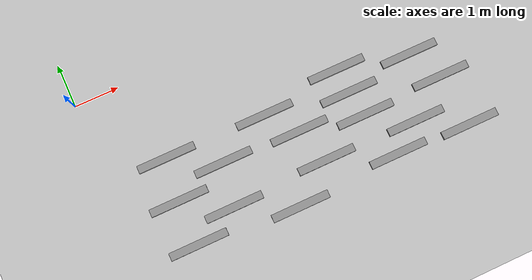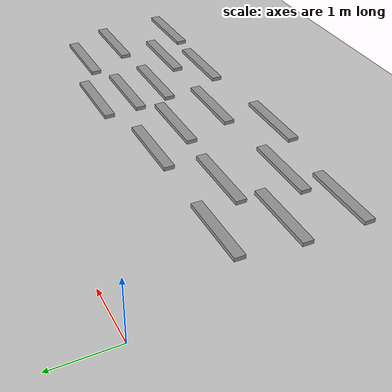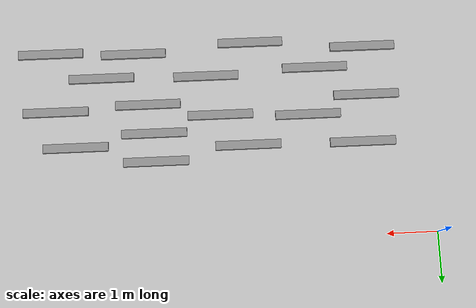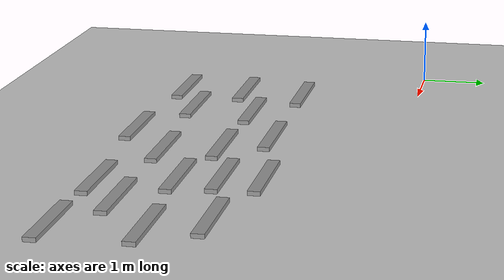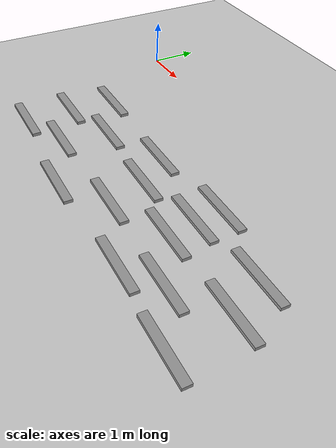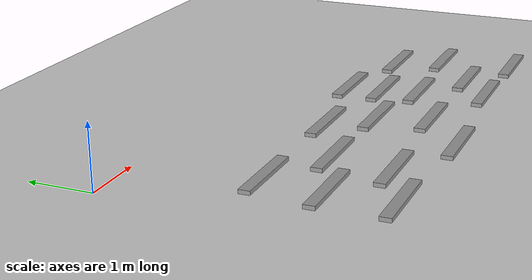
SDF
<sdf version="1.6">
 <world name="default">
  <model name="ground_plane">
   <static>1</static>
   <link name="link">
    <collision name="collision">
     <geometry><plane><normal>0 0 1</normal><size>100 100</size></plane></geometry>
     <surface>
      <contact><ode><kp>1e+12</kp><min_depth>0.01</min_depth></ode></contact>
      <friction><ode><mu>1e+06</mu><mu2>500000</mu2></ode></friction>
     </surface>
    </collision>
    <visual name="visual">
     <cast_shadows>0</cast_shadows>
     <geometry><plane><normal>0 0 1</normal><size>100 100</size></plane></geometry>
     <material>
      <script><uri>file://media/materials/scripts/gazebo.material</uri><name>Gazebo/Grey</name></script>
     </material>
    </visual>
   </link>
  </model>
  <model name="unit_box_heavy_clone_clone_clone_clone_12">
   <link name="unit_box::link">
    <inertial>
     <mass>5000</mass>
     <inertia><ixx>833.333</ixx><ixy>0</ixy><ixz>0</ixz><iyy>833.333</iyy><iyz>0</iyz><izz>833.333</izz></inertia>
    </inertial>
    <visual name="visual">
     <geometry><box><size>1.30816 0.176312 0.062582</size></box></geometry>
     <material>
      <script><name>Gazebo/Grey</name><uri>file://media/materials/scripts/gazebo.material</uri></script>
      <shader type="pixel"><normal_map>__default__</normal_map></shader>
     </material>
    </visual>
    <collision name="collision">
     <geometry><box><size>1.30816 0.176312 0.062582</size></box></geometry>
     <surface>
      <friction>
       <ode><mu>1</mu><mu2>1</mu2><fdir1>0 0 0</fdir1><slip1>0</slip1><slip2>0</slip2></ode>
       <torsional>
        <coefficient>1</coefficient>
        <patch_radius>0</patch_radius>
        <surface_radius>0</surface_radius>
        <use_patch_radius>1</use_patch_radius>
        <ode><slip>0</slip></ode>
       </torsional>
      </friction>
      <bounce><restitution_coefficient>0</restitution_coefficient><threshold>1e+06</threshold></bounce>
      <contact>
       <collide_without_contact>0</collide_without_contact>
       <collide_without_contact_bitmask>1</collide_without_contact_bitmask>
       <collide_bitmask>1</collide_bitmask>
       <ode>
        <soft_cfm>0</soft_cfm>
        <soft_erp>0.2</soft_erp>
        <kp>1e+13</kp>
        <kd>1</kd>
        <max_vel>0.01</max_vel>
        <min_depth>0</min_depth>
       </ode>
       <bullet>
        <split_impulse>1</split_impulse>
        <split_impulse_penetration_threshold>-0.01</split_impulse_penetration_threshold>
        <soft_cfm>0</soft_cfm>
        <soft_erp>0.2</soft_erp>
        <kp>1e+13</kp>
        <kd>1</kd>
       </bullet>
      </contact>
     </surface>
    </collision>
   </link>
   <static>0</static>
   <pose>1.34566 -1.85854 0.031291 -0 -0 -3e-05</pose>
  </model>
  <model name="unit_box_heavy_clone_clone_clone_clone_13">
   <link name="unit_box::link">
    <inertial>
     <mass>5000</mass>
     <inertia><ixx>833.333</ixx><ixy>0</ixy><ixz>0</ixz><iyy>833.333</iyy><iyz>0</iyz><izz>833.333</izz></inertia>
    </inertial>
    <visual name="visual">
     <geometry><box><size>1.30816 0.176312 0.062582</size></box></geometry>
     <material>
      <script><name>Gazebo/Grey</name><uri>file://media/materials/scripts/gazebo.material</uri></script>
      <shader type="pixel"><normal_map>__default__</normal_map></shader>
     </material>
    </visual>
    <collision name="collision">
     <geometry><box><size>1.30816 0.176312 0.062582</size></box></geometry>
     <surface>
      <friction>
       <ode><mu>1</mu><mu2>1</mu2><fdir1>0 0 0</fdir1><slip1>0</slip1><slip2>0</slip2></ode>
       <torsional>
        <coefficient>1</coefficient>
        <patch_radius>0</patch_radius>
        <surface_radius>0</surface_radius>
        <use_patch_radius>1</use_patch_radius>
        <ode><slip>0</slip></ode>
       </torsional>
      </friction>
      <bounce><restitution_coefficient>0</restitution_coefficient><threshold>1e+06</threshold></bounce>
      <contact>
       <collide_without_contact>0</collide_without_contact>
       <collide_without_contact_bitmask>1</collide_without_contact_bitmask>
       <collide_bitmask>1</collide_bitmask>
       <ode>
        <soft_cfm>0</soft_cfm>
        <soft_erp>0.2</soft_erp>
        <kp>1e+13</kp>
        <kd>1</kd>
        <max_vel>0.01</max_vel>
        <min_depth>0</min_depth>
       </ode>
       <bullet>
        <split_impulse>1</split_impulse>
        <split_impulse_penetration_threshold>-0.01</split_impulse_penetration_threshold>
        <soft_cfm>0</soft_cfm>
        <soft_erp>0.2</soft_erp>
        <kp>1e+13</kp>
        <kd>1</kd>
       </bullet>
      </contact>
     </surface>
    </collision>
   </link>
   <static>0</static>
   <pose>2.40853 -2.45748 0.031291 0 0 -3e-05</pose>
  </model>
  <model name="unit_box_heavy_clone_clone_clone_clone_14">
   <link name="unit_box::link">
    <inertial>
     <mass>5000</mass>
     <inertia><ixx>833.333</ixx><ixy>0</ixy><ixz>0</ixz><iyy>833.333</iyy><iyz>0</iyz><izz>833.333</izz></inertia>
    </inertial>
    <visual name="visual">
     <geometry><box><size>1.30816 0.176312 0.062582</size></box></geometry>
     <material>
      <script><name>Gazebo/Grey</name><uri>file://media/materials/scripts/gazebo.material</uri></script>
      <shader type="pixel"><normal_map>__default__</normal_map></shader>
     </material>
    </visual>
    <collision name="collision">
     <geometry><box><size>1.30816 0.176312 0.062582</size></box></geometry>
     <surface>
      <friction>
       <ode><mu>1</mu><mu2>1</mu2><fdir1>0 0 0</fdir1><slip1>0</slip1><slip2>0</slip2></ode>
       <torsional>
        <coefficient>1</coefficient>
        <patch_radius>0</patch_radius>
        <surface_radius>0</surface_radius>
        <use_patch_radius>1</use_patch_radius>
        <ode><slip>0</slip></ode>
       </torsional>
      </friction>
      <bounce><restitution_coefficient>0</restitution_coefficient><threshold>1e+06</threshold></bounce>
      <contact>
       <collide_without_contact>0</collide_without_contact>
       <collide_without_contact_bitmask>1</collide_without_contact_bitmask>
       <collide_bitmask>1</collide_bitmask>
       <ode>
        <soft_cfm>0</soft_cfm>
        <soft_erp>0.2</soft_erp>
        <kp>1e+13</kp>
        <kd>1</kd>
        <max_vel>0.01</max_vel>
        <min_depth>0</min_depth>
       </ode>
       <bullet>
        <split_impulse>1</split_impulse>
        <split_impulse_penetration_threshold>-0.01</split_impulse_penetration_threshold>
        <soft_cfm>0</soft_cfm>
        <soft_erp>0.2</soft_erp>
        <kp>1e+13</kp>
        <kd>1</kd>
       </bullet>
      </contact>
     </surface>
    </collision>
   </link>
   <static>0</static>
   <pose>1.21705 -2.82297 0.031291 -0 -0 -3e-05</pose>
  </model>
  <model name="unit_box_heavy_clone_clone_clone_clone_15">
   <link name="unit_box::link">
    <inertial>
     <mass>5000</mass>
     <inertia><ixx>833.333</ixx><ixy>0</ixy><ixz>0</ixz><iyy>833.333</iyy><iyz>0</iyz><izz>833.333</izz></inertia>
    </inertial>
    <visual name="visual">
     <geometry><box><size>1.30816 0.176312 0.062582</size></box></geometry>
     <material>
      <script><name>Gazebo/Grey</name><uri>file://media/materials/scripts/gazebo.material</uri></script>
      <shader type="pixel"><normal_map>__default__</normal_map></shader>
     </material>
    </visual>
    <collision name="collision">
     <geometry><box><size>1.30816 0.176312 0.062582</size></box></geometry>
     <surface>
      <friction>
       <ode><mu>1</mu><mu2>1</mu2><fdir1>0 0 0</fdir1><slip1>0</slip1><slip2>0</slip2></ode>
       <torsional>
        <coefficient>1</coefficient>
        <patch_radius>0</patch_radius>
        <surface_radius>0</surface_radius>
        <use_patch_radius>1</use_patch_radius>
        <ode><slip>0</slip></ode>
       </torsional>
      </friction>
      <bounce><restitution_coefficient>0</restitution_coefficient><threshold>1e+06</threshold></bounce>
      <contact>
       <collide_without_contact>0</collide_without_contact>
       <collide_without_contact_bitmask>1</collide_without_contact_bitmask>
       <collide_bitmask>1</collide_bitmask>
       <ode>
        <soft_cfm>0</soft_cfm>
        <soft_erp>0.2</soft_erp>
        <kp>1e+13</kp>
        <kd>1</kd>
        <max_vel>0.01</max_vel>
        <min_depth>0</min_depth>
       </ode>
       <bullet>
        <split_impulse>1</split_impulse>
        <split_impulse_penetration_threshold>-0.01</split_impulse_penetration_threshold>
        <soft_cfm>0</soft_cfm>
        <soft_erp>0.2</soft_erp>
        <kp>1e+13</kp>
        <kd>1</kd>
       </bullet>
      </contact>
     </surface>
    </collision>
   </link>
   <static>0</static>
   <pose>2.22318 -3.42702 0.031291 0 0 -3e-05</pose>
  </model>
  <model name="unit_box_heavy_clone_clone_clone_clone_16">
   <link name="unit_box::link">
    <inertial>
     <mass>5000</mass>
     <inertia><ixx>833.333</ixx><ixy>0</ixy><ixz>0</ixz><iyy>833.333</iyy><iyz>0</iyz><izz>833.333</izz></inertia>
    </inertial>
    <visual name="visual">
     <geometry><box><size>1.30816 0.176312 0.062582</size></box></geometry>
     <material>
      <script><name>Gazebo/Grey</name><uri>file://media/materials/scripts/gazebo.material</uri></script>
      <shader type="pixel"><normal_map>__default__</normal_map></shader>
     </material>
    </visual>
    <collision name="collision">
     <geometry><box><size>1.30816 0.176312 0.062582</size></box></geometry>
     <surface>
      <friction>
       <ode><mu>1</mu><mu2>1</mu2><fdir1>0 0 0</fdir1><slip1>0</slip1><slip2>0</slip2></ode>
       <torsional>
        <coefficient>1</coefficient>
        <patch_radius>0</patch_radius>
        <surface_radius>0</surface_radius>
        <use_patch_radius>1</use_patch_radius>
        <ode><slip>0</slip></ode>
       </torsional>
      </friction>
      <bounce><restitution_coefficient>0</restitution_coefficient><threshold>1e+06</threshold></bounce>
      <contact>
       <collide_without_contact>0</collide_without_contact>
       <collide_without_contact_bitmask>1</collide_without_contact_bitmask>
       <collide_bitmask>1</collide_bitmask>
       <ode>
        <soft_cfm>0</soft_cfm>
        <soft_erp>0.2</soft_erp>
        <kp>1e+13</kp>
        <kd>1</kd>
        <max_vel>0.01</max_vel>
        <min_depth>0</min_depth>
       </ode>
       <bullet>
        <split_impulse>1</split_impulse>
        <split_impulse_penetration_threshold>-0.01</split_impulse_penetration_threshold>
        <soft_cfm>0</soft_cfm>
        <soft_erp>0.2</soft_erp>
        <kp>1e+13</kp>
        <kd>1</kd>
       </bullet>
      </contact>
     </surface>
    </collision>
   </link>
   <static>0</static>
   <pose>1.23338 -3.83282 0.031291 -0 -0 -3e-05</pose>
  </model>
  <model name="unit_box_heavy_clone_clone_clone_clone_17">
   <link name="unit_box::link">
    <inertial>
     <mass>5000</mass>
     <inertia><ixx>833.333</ixx><ixy>0</ixy><ixz>0</ixz><iyy>833.333</iyy><iyz>0</iyz><izz>833.333</izz></inertia>
    </inertial>
    <visual name="visual">
     <geometry><box><size>1.30816 0.176312 0.062582</size></box></geometry>
     <material>
      <script><name>Gazebo/Grey</name><uri>file://media/materials/scripts/gazebo.material</uri></script>
      <shader type="pixel"><normal_map>__default__</normal_map></shader>
     </material>
    </visual>
    <collision name="collision">
     <geometry><box><size>1.30816 0.176312 0.062582</size></box></geometry>
     <surface>
      <friction>
       <ode><mu>1</mu><mu2>1</mu2><fdir1>0 0 0</fdir1><slip1>0</slip1><slip2>0</slip2></ode>
       <torsional>
        <coefficient>1</coefficient>
        <patch_radius>0</patch_radius>
        <surface_radius>0</surface_radius>
        <use_patch_radius>1</use_patch_radius>
        <ode><slip>0</slip></ode>
       </torsional>
      </friction>
      <bounce><restitution_coefficient>0</restitution_coefficient><threshold>1e+06</threshold></bounce>
      <contact>
       <collide_without_contact>0</collide_without_contact>
       <collide_without_contact_bitmask>1</collide_without_contact_bitmask>
       <collide_bitmask>1</collide_bitmask>
       <ode>
        <soft_cfm>0</soft_cfm>
        <soft_erp>0.2</soft_erp>
        <kp>1e+13</kp>
        <kd>1</kd>
        <max_vel>0.01</max_vel>
        <min_depth>0</min_depth>
       </ode>
       <bullet>
        <split_impulse>1</split_impulse>
        <split_impulse_penetration_threshold>-0.01</split_impulse_penetration_threshold>
        <soft_cfm>0</soft_cfm>
        <soft_erp>0.2</soft_erp>
        <kp>1e+13</kp>
        <kd>1</kd>
       </bullet>
      </contact>
     </surface>
    </collision>
   </link>
   <static>0</static>
   <pose>3.633 -1.88112 0.031291 0 0 -3e-05</pose>
  </model>
  <model name="unit_box_heavy_clone_clone_clone_clone_27">
   <link name="unit_box::link">
    <inertial>
     <mass>5000</mass>
     <inertia><ixx>833.333</ixx><ixy>0</ixy><ixz>0</ixz><iyy>833.333</iyy><iyz>0</iyz><izz>833.333</izz></inertia>
    </inertial>
    <visual name="visual">
     <geometry><box><size>1.30816 0.176312 0.062582</size></box></geometry>
     <material>
      <script><name>Gazebo/Grey</name><uri>file://media/materials/scripts/gazebo.material</uri></script>
      <shader type="pixel"><normal_map>__default__</normal_map></shader>
     </material>
    </visual>
    <collision name="collision">
     <geometry><box><size>1.30816 0.176312 0.062582</size></box></geometry>
     <surface>
      <friction>
       <ode><mu>1</mu><mu2>1</mu2><fdir1>0 0 0</fdir1><slip1>0</slip1><slip2>0</slip2></ode>
       <torsional>
        <coefficient>1</coefficient>
        <patch_radius>0</patch_radius>
        <surface_radius>0</surface_radius>
        <use_patch_radius>1</use_patch_radius>
        <ode><slip>0</slip></ode>
       </torsional>
      </friction>
      <bounce><restitution_coefficient>0</restitution_coefficient><threshold>1e+06</threshold></bounce>
      <contact>
       <collide_without_contact>0</collide_without_contact>
       <collide_without_contact_bitmask>1</collide_without_contact_bitmask>
       <collide_bitmask>1</collide_bitmask>
       <ode>
        <soft_cfm>0</soft_cfm>
        <soft_erp>0.2</soft_erp>
        <kp>1e+13</kp>
        <kd>1</kd>
        <max_vel>0.01</max_vel>
        <min_depth>0</min_depth>
       </ode>
       <bullet>
        <split_impulse>1</split_impulse>
        <split_impulse_penetration_threshold>-0.01</split_impulse_penetration_threshold>
        <soft_cfm>0</soft_cfm>
        <soft_erp>0.2</soft_erp>
        <kp>1e+13</kp>
        <kd>1</kd>
       </bullet>
      </contact>
     </surface>
    </collision>
   </link>
   <static>0</static>
   <pose>4.16552 -2.51812 0.031291 0 0 -3e-05</pose>
  </model>
  <model name="unit_box_heavy_clone_clone_clone_clone_28">
   <link name="unit_box::link">
    <inertial>
     <mass>5000</mass>
     <inertia><ixx>833.333</ixx><ixy>0</ixy><ixz>0</ixz><iyy>833.333</iyy><iyz>0</iyz><izz>833.333</izz></inertia>
    </inertial>
    <visual name="visual">
     <geometry><box><size>1.30816 0.176312 0.062582</size></box></geometry>
     <material>
      <script><name>Gazebo/Grey</name><uri>file://media/materials/scripts/gazebo.material</uri></script>
      <shader type="pixel"><normal_map>__default__</normal_map></shader>
     </material>
    </visual>
    <collision name="collision">
     <geometry><box><size>1.30816 0.176312 0.062582</size></box></geometry>
     <surface>
      <friction>
       <ode><mu>1</mu><mu2>1</mu2><fdir1>0 0 0</fdir1><slip1>0</slip1><slip2>0</slip2></ode>
       <torsional>
        <coefficient>1</coefficient>
        <patch_radius>0</patch_radius>
        <surface_radius>0</surface_radius>
        <use_patch_radius>1</use_patch_radius>
        <ode><slip>0</slip></ode>
       </torsional>
      </friction>
      <bounce><restitution_coefficient>0</restitution_coefficient><threshold>1e+06</threshold></bounce>
      <contact>
       <collide_without_contact>0</collide_without_contact>
       <collide_without_contact_bitmask>1</collide_without_contact_bitmask>
       <collide_bitmask>1</collide_bitmask>
       <ode>
        <soft_cfm>0</soft_cfm>
        <soft_erp>0.2</soft_erp>
        <kp>1e+13</kp>
        <kd>1</kd>
        <max_vel>0.01</max_vel>
        <min_depth>0</min_depth>
       </ode>
       <bullet>
        <split_impulse>1</split_impulse>
        <split_impulse_penetration_threshold>-0.01</split_impulse_penetration_threshold>
        <soft_cfm>0</soft_cfm>
        <soft_erp>0.2</soft_erp>
        <kp>1e+13</kp>
        <kd>1</kd>
       </bullet>
      </contact>
     </surface>
    </collision>
   </link>
   <static>0</static>
   <pose>4.42684 -3.32952 0.031291 -0 -0 -3e-05</pose>
  </model>
  <model name="unit_box_heavy_clone_clone_clone_clone_29">
   <link name="unit_box::link">
    <inertial>
     <mass>5000</mass>
     <inertia><ixx>833.333</ixx><ixy>0</ixy><ixz>0</ixz><iyy>833.333</iyy><iyz>0</iyz><izz>833.333</izz></inertia>
    </inertial>
    <visual name="visual">
     <geometry><box><size>1.30816 0.176312 0.062582</size></box></geometry>
     <material>
      <script><name>Gazebo/Grey</name><uri>file://media/materials/scripts/gazebo.material</uri></script>
      <shader type="pixel"><normal_map>__default__</normal_map></shader>
     </material>
    </visual>
    <collision name="collision">
     <geometry><box><size>1.30816 0.176312 0.062582</size></box></geometry>
     <surface>
      <friction>
       <ode><mu>1</mu><mu2>1</mu2><fdir1>0 0 0</fdir1><slip1>0</slip1><slip2>0</slip2></ode>
       <torsional>
        <coefficient>1</coefficient>
        <patch_radius>0</patch_radius>
        <surface_radius>0</surface_radius>
        <use_patch_radius>1</use_patch_radius>
        <ode><slip>0</slip></ode>
       </torsional>
      </friction>
      <bounce><restitution_coefficient>0</restitution_coefficient><threshold>1e+06</threshold></bounce>
      <contact>
       <collide_without_contact>0</collide_without_contact>
       <collide_without_contact_bitmask>1</collide_without_contact_bitmask>
       <collide_bitmask>1</collide_bitmask>
       <ode>
        <soft_cfm>0</soft_cfm>
        <soft_erp>0.2</soft_erp>
        <kp>1e+13</kp>
        <kd>1</kd>
        <max_vel>0.01</max_vel>
        <min_depth>0</min_depth>
       </ode>
       <bullet>
        <split_impulse>1</split_impulse>
        <split_impulse_penetration_threshold>-0.01</split_impulse_penetration_threshold>
        <soft_cfm>0</soft_cfm>
        <soft_erp>0.2</soft_erp>
        <kp>1e+13</kp>
        <kd>1</kd>
       </bullet>
      </contact>
     </surface>
    </collision>
   </link>
   <static>0</static>
   <pose>3.50593 -4.00102 0.031291 0 0 -3e-05</pose>
  </model>
  <model name="unit_box_heavy_clone_clone_clone_clone_30">
   <link name="unit_box::link">
    <inertial>
     <mass>5000</mass>
     <inertia><ixx>833.333</ixx><ixy>0</ixy><ixz>0</ixz><iyy>833.333</iyy><iyz>0</iyz><izz>833.333</izz></inertia>
    </inertial>
    <visual name="visual">
     <geometry><box><size>1.30816 0.176312 0.062582</size></box></geometry>
     <material>
      <script><name>Gazebo/Grey</name><uri>file://media/materials/scripts/gazebo.material</uri></script>
      <shader type="pixel"><normal_map>__default__</normal_map></shader>
     </material>
    </visual>
    <collision name="collision">
     <geometry><box><size>1.30816 0.176312 0.062582</size></box></geometry>
     <surface>
      <friction>
       <ode><mu>1</mu><mu2>1</mu2><fdir1>0 0 0</fdir1><slip1>0</slip1><slip2>0</slip2></ode>
       <torsional>
        <coefficient>1</coefficient>
        <patch_radius>0</patch_radius>
        <surface_radius>0</surface_radius>
        <use_patch_radius>1</use_patch_radius>
        <ode><slip>0</slip></ode>
       </torsional>
      </friction>
      <bounce><restitution_coefficient>0</restitution_coefficient><threshold>1e+06</threshold></bounce>
      <contact>
       <collide_without_contact>0</collide_without_contact>
       <collide_without_contact_bitmask>1</collide_without_contact_bitmask>
       <collide_bitmask>1</collide_bitmask>
       <ode>
        <soft_cfm>0</soft_cfm>
        <soft_erp>0.2</soft_erp>
        <kp>1e+13</kp>
        <kd>1</kd>
        <max_vel>0.01</max_vel>
        <min_depth>0</min_depth>
       </ode>
       <bullet>
        <split_impulse>1</split_impulse>
        <split_impulse_penetration_threshold>-0.01</split_impulse_penetration_threshold>
        <soft_cfm>0</soft_cfm>
        <soft_erp>0.2</soft_erp>
        <kp>1e+13</kp>
        <kd>1</kd>
       </bullet>
      </contact>
     </surface>
    </collision>
   </link>
   <static>0</static>
   <pose>5.88261 -3.84569 0.031291 -0 -0 -3e-05</pose>
  </model>
  <model name="unit_box_heavy_clone_clone_clone_clone_31">
   <link name="unit_box::link">
    <inertial>
     <mass>5000</mass>
     <inertia><ixx>833.333</ixx><ixy>0</ixy><ixz>0</ixz><iyy>833.333</iyy><iyz>0</iyz><izz>833.333</izz></inertia>
    </inertial>
    <visual name="visual">
     <geometry><box><size>1.30816 0.176312 0.062582</size></box></geometry>
     <material>
      <script><name>Gazebo/Grey</name><uri>file://media/materials/scripts/gazebo.material</uri></script>
      <shader type="pixel"><normal_map>__default__</normal_map></shader>
     </material>
    </visual>
    <collision name="collision">
     <geometry><box><size>1.30816 0.176312 0.062582</size></box></geometry>
     <surface>
      <friction>
       <ode><mu>1</mu><mu2>1</mu2><fdir1>0 0 0</fdir1><slip1>0</slip1><slip2>0</slip2></ode>
       <torsional>
        <coefficient>1</coefficient>
        <patch_radius>0</patch_radius>
        <surface_radius>0</surface_radius>
        <use_patch_radius>1</use_patch_radius>
        <ode><slip>0</slip></ode>
       </torsional>
      </friction>
      <bounce><restitution_coefficient>0</restitution_coefficient><threshold>1e+06</threshold></bounce>
      <contact>
       <collide_without_contact>0</collide_without_contact>
       <collide_without_contact_bitmask>1</collide_without_contact_bitmask>
       <collide_bitmask>1</collide_bitmask>
       <ode>
        <soft_cfm>0</soft_cfm>
        <soft_erp>0.2</soft_erp>
        <kp>1e+13</kp>
        <kd>1</kd>
        <max_vel>0.01</max_vel>
        <min_depth>0</min_depth>
       </ode>
       <bullet>
        <split_impulse>1</split_impulse>
        <split_impulse_penetration_threshold>-0.01</split_impulse_penetration_threshold>
        <soft_cfm>0</soft_cfm>
        <soft_erp>0.2</soft_erp>
        <kp>1e+13</kp>
        <kd>1</kd>
       </bullet>
      </contact>
     </surface>
    </collision>
   </link>
   <static>0</static>
   <pose>5.61277 -2.78245 0.031291 0 0 -3e-05</pose>
  </model>
  <model name="unit_box_heavy_clone_clone_clone_clone_32">
   <link name="unit_box::link">
    <inertial>
     <mass>5000</mass>
     <inertia><ixx>833.333</ixx><ixy>0</ixy><ixz>0</ixz><iyy>833.333</iyy><iyz>0</iyz><izz>833.333</izz></inertia>
    </inertial>
    <visual name="visual">
     <geometry><box><size>1.30816 0.176312 0.062582</size></box></geometry>
     <material>
      <script><name>Gazebo/Grey</name><uri>file://media/materials/scripts/gazebo.material</uri></script>
      <shader type="pixel"><normal_map>__default__</normal_map></shader>
     </material>
    </visual>
    <collision name="collision">
     <geometry><box><size>1.30816 0.176312 0.062582</size></box></geometry>
     <surface>
      <friction>
       <ode><mu>1</mu><mu2>1</mu2><fdir1>0 0 0</fdir1><slip1>0</slip1><slip2>0</slip2></ode>
       <torsional>
        <coefficient>1</coefficient>
        <patch_radius>0</patch_radius>
        <surface_radius>0</surface_radius>
        <use_patch_radius>1</use_patch_radius>
        <ode><slip>0</slip></ode>
       </torsional>
      </friction>
      <bounce><restitution_coefficient>0</restitution_coefficient><threshold>1e+06</threshold></bounce>
      <contact>
       <collide_without_contact>0</collide_without_contact>
       <collide_without_contact_bitmask>1</collide_without_contact_bitmask>
       <collide_bitmask>1</collide_bitmask>
       <ode>
        <soft_cfm>0</soft_cfm>
        <soft_erp>0.2</soft_erp>
        <kp>1e+13</kp>
        <kd>1</kd>
        <max_vel>0.01</max_vel>
        <min_depth>0</min_depth>
       </ode>
       <bullet>
        <split_impulse>1</split_impulse>
        <split_impulse_penetration_threshold>-0.01</split_impulse_penetration_threshold>
        <soft_cfm>0</soft_cfm>
        <soft_erp>0.2</soft_erp>
        <kp>1e+13</kp>
        <kd>1</kd>
       </bullet>
      </contact>
     </surface>
    </collision>
   </link>
   <static>0</static>
   <pose>5.50002 -2.19012 0.031291 0 0 -3e-05</pose>
  </model>
  <model name="unit_box_heavy_clone_clone_clone_clone_33">
   <link name="unit_box::link">
    <inertial>
     <mass>5000</mass>
     <inertia><ixx>833.333</ixx><ixy>0</ixy><ixz>0</ixz><iyy>833.333</iyy><iyz>0</iyz><izz>833.333</izz></inertia>
    </inertial>
    <visual name="visual">
     <geometry><box><size>1.30816 0.176312 0.062582</size></box></geometry>
     <material>
      <script><name>Gazebo/Grey</name><uri>file://media/materials/scripts/gazebo.material</uri></script>
      <shader type="pixel"><normal_map>__default__</normal_map></shader>
     </material>
    </visual>
    <collision name="collision">
     <geometry><box><size>1.30816 0.176312 0.062582</size></box></geometry>
     <surface>
      <friction>
       <ode><mu>1</mu><mu2>1</mu2><fdir1>0 0 0</fdir1><slip1>0</slip1><slip2>0</slip2></ode>
       <torsional>
        <coefficient>1</coefficient>
        <patch_radius>0</patch_radius>
        <surface_radius>0</surface_radius>
        <use_patch_radius>1</use_patch_radius>
        <ode><slip>0</slip></ode>
       </torsional>
      </friction>
      <bounce><restitution_coefficient>0</restitution_coefficient><threshold>1e+06</threshold></bounce>
      <contact>
       <collide_without_contact>0</collide_without_contact>
       <collide_without_contact_bitmask>1</collide_without_contact_bitmask>
       <collide_bitmask>1</collide_bitmask>
       <ode>
        <soft_cfm>0</soft_cfm>
        <soft_erp>0.2</soft_erp>
        <kp>1e+13</kp>
        <kd>1</kd>
        <max_vel>0.01</max_vel>
        <min_depth>0</min_depth>
       </ode>
       <bullet>
        <split_impulse>1</split_impulse>
        <split_impulse_penetration_threshold>-0.01</split_impulse_penetration_threshold>
        <soft_cfm>0</soft_cfm>
        <soft_erp>0.2</soft_erp>
        <kp>1e+13</kp>
        <kd>1</kd>
       </bullet>
      </contact>
     </surface>
    </collision>
   </link>
   <static>0</static>
   <pose>5.47696 -1.6162 0.031291 0 -0 -3e-05</pose>
  </model>
  <model name="unit_box_heavy_clone_clone_clone_clone_45">
   <link name="unit_box::link">
    <inertial>
     <mass>5000</mass>
     <inertia><ixx>833.333</ixx><ixy>0</ixy><ixz>0</ixz><iyy>833.333</iyy><iyz>0</iyz><izz>833.333</izz></inertia>
    </inertial>
    <visual name="visual">
     <geometry><box><size>1.30816 0.176312 0.062582</size></box></geometry>
     <material>
      <script><name>Gazebo/Grey</name><uri>file://media/materials/scripts/gazebo.material</uri></script>
      <shader type="pixel"><normal_map>__default__</normal_map></shader>
     </material>
    </visual>
    <collision name="collision">
     <geometry><box><size>1.30816 0.176312 0.062582</size></box></geometry>
     <surface>
      <friction>
       <ode><mu>1</mu><mu2>1</mu2><fdir1>0 0 0</fdir1><slip1>0</slip1><slip2>0</slip2></ode>
       <torsional>
        <coefficient>1</coefficient>
        <patch_radius>0</patch_radius>
        <surface_radius>0</surface_radius>
        <use_patch_radius>1</use_patch_radius>
        <ode><slip>0</slip></ode>
       </torsional>
      </friction>
      <bounce><restitution_coefficient>0</restitution_coefficient><threshold>1e+06</threshold></bounce>
      <contact>
       <collide_without_contact>0</collide_without_contact>
       <collide_without_contact_bitmask>1</collide_without_contact_bitmask>
       <collide_bitmask>1</collide_bitmask>
       <ode>
        <soft_cfm>0</soft_cfm>
        <soft_erp>0.2</soft_erp>
        <kp>1e+13</kp>
        <kd>1</kd>
        <max_vel>0.01</max_vel>
        <min_depth>0</min_depth>
       </ode>
       <bullet>
        <split_impulse>1</split_impulse>
        <split_impulse_penetration_threshold>-0.01</split_impulse_penetration_threshold>
        <soft_cfm>0</soft_cfm>
        <soft_erp>0.2</soft_erp>
        <kp>1e+13</kp>
        <kd>1</kd>
       </bullet>
      </contact>
     </surface>
    </collision>
   </link>
   <static>0</static>
   <pose>7.07064 -1.9558 0.031291 -2e-06 -0 -3e-05</pose>
  </model>
  <model name="unit_box_heavy_clone_clone_clone_clone_47">
   <link name="unit_box::link">
    <inertial>
     <mass>5000</mass>
     <inertia><ixx>833.333</ixx><ixy>0</ixy><ixz>0</ixz><iyy>833.333</iyy><iyz>0</iyz><izz>833.333</izz></inertia>
    </inertial>
    <visual name="visual">
     <geometry><box><size>1.30816 0.176312 0.062582</size></box></geometry>
     <material>
      <script><name>Gazebo/Grey</name><uri>file://media/materials/scripts/gazebo.material</uri></script>
      <shader type="pixel"><normal_map>__default__</normal_map></shader>
     </material>
    </visual>
    <collision name="collision">
     <geometry><box><size>1.30816 0.176312 0.062582</size></box></geometry>
     <surface>
      <friction>
       <ode><mu>1</mu><mu2>1</mu2><fdir1>0 0 0</fdir1><slip1>0</slip1><slip2>0</slip2></ode>
       <torsional>
        <coefficient>1</coefficient>
        <patch_radius>0</patch_radius>
        <surface_radius>0</surface_radius>
        <use_patch_radius>1</use_patch_radius>
        <ode><slip>0</slip></ode>
       </torsional>
      </friction>
      <bounce><restitution_coefficient>0</restitution_coefficient><threshold>1e+06</threshold></bounce>
      <contact>
       <collide_without_contact>0</collide_without_contact>
       <collide_without_contact_bitmask>1</collide_without_contact_bitmask>
       <collide_bitmask>1</collide_bitmask>
       <ode>
        <soft_cfm>0</soft_cfm>
        <soft_erp>0.2</soft_erp>
        <kp>1e+13</kp>
        <kd>1</kd>
        <max_vel>0.01</max_vel>
        <min_depth>0</min_depth>
       </ode>
       <bullet>
        <split_impulse>1</split_impulse>
        <split_impulse_penetration_threshold>-0.01</split_impulse_penetration_threshold>
        <soft_cfm>0</soft_cfm>
        <soft_erp>0.2</soft_erp>
        <kp>1e+13</kp>
        <kd>1</kd>
       </bullet>
      </contact>
     </surface>
    </collision>
   </link>
   <static>0</static>
   <pose>7.46657 -2.69611 0.031291 2e-06 -0 -3e-05</pose>
  </model>
  <model name="unit_box_heavy_clone_clone_clone_clone_48">
   <link name="unit_box::link">
    <inertial>
     <mass>5000</mass>
     <inertia><ixx>833.333</ixx><ixy>0</ixy><ixz>0</ixz><iyy>833.333</iyy><iyz>0</iyz><izz>833.333</izz></inertia>
    </inertial>
    <visual name="visual">
     <geometry><box><size>1.30816 0.176312 0.062582</size></box></geometry>
     <material>
      <script><name>Gazebo/Grey</name><uri>file://media/materials/scripts/gazebo.material</uri></script>
      <shader type="pixel"><normal_map>__default__</normal_map></shader>
     </material>
    </visual>
    <collision name="collision">
     <geometry><box><size>1.30816 0.176312 0.062582</size></box></geometry>
     <surface>
      <friction>
       <ode><mu>1</mu><mu2>1</mu2><fdir1>0 0 0</fdir1><slip1>0</slip1><slip2>0</slip2></ode>
       <torsional>
        <coefficient>1</coefficient>
        <patch_radius>0</patch_radius>
        <surface_radius>0</surface_radius>
        <use_patch_radius>1</use_patch_radius>
        <ode><slip>0</slip></ode>
       </torsional>
      </friction>
      <bounce><restitution_coefficient>0</restitution_coefficient><threshold>1e+06</threshold></bounce>
      <contact>
       <collide_without_contact>0</collide_without_contact>
       <collide_without_contact_bitmask>1</collide_without_contact_bitmask>
       <collide_bitmask>1</collide_bitmask>
       <ode>
        <soft_cfm>0</soft_cfm>
        <soft_erp>0.2</soft_erp>
        <kp>1e+13</kp>
        <kd>1</kd>
        <max_vel>0.01</max_vel>
        <min_depth>0</min_depth>
       </ode>
       <bullet>
        <split_impulse>1</split_impulse>
        <split_impulse_penetration_threshold>-0.01</split_impulse_penetration_threshold>
        <soft_cfm>0</soft_cfm>
        <soft_erp>0.2</soft_erp>
        <kp>1e+13</kp>
        <kd>1</kd>
       </bullet>
      </contact>
     </surface>
    </collision>
   </link>
   <static>0</static>
   <pose>6.53636 -3.36264 0.031291 -2e-06 -0 -3e-05</pose>
  </model>
  <model name="unit_box_heavy_clone_clone_clone_clone_49">
   <link name="unit_box::link">
    <inertial>
     <mass>5000</mass>
     <inertia><ixx>833.333</ixx><ixy>0</ixy><ixz>0</ixz><iyy>833.333</iyy><iyz>0</iyz><izz>833.333</izz></inertia>
    </inertial>
    <visual name="visual">
     <geometry><box><size>1.30816 0.176312 0.062582</size></box></geometry>
     <material>
      <script><name>Gazebo/Grey</name><uri>file://media/materials/scripts/gazebo.material</uri></script>
      <shader type="pixel"><normal_map>__default__</normal_map></shader>
     </material>
    </visual>
    <collision name="collision">
     <geometry><box><size>1.30816 0.176312 0.062582</size></box></geometry>
     <surface>
      <friction>
       <ode><mu>1</mu><mu2>1</mu2><fdir1>0 0 0</fdir1><slip1>0</slip1><slip2>0</slip2></ode>
       <torsional>
        <coefficient>1</coefficient>
        <patch_radius>0</patch_radius>
        <surface_radius>0</surface_radius>
        <use_patch_radius>1</use_patch_radius>
        <ode><slip>0</slip></ode>
       </torsional>
      </friction>
      <bounce><restitution_coefficient>0</restitution_coefficient><threshold>1e+06</threshold></bounce>
      <contact>
       <collide_without_contact>0</collide_without_contact>
       <collide_without_contact_bitmask>1</collide_without_contact_bitmask>
       <collide_bitmask>1</collide_bitmask>
       <ode>
        <soft_cfm>0</soft_cfm>
        <soft_erp>0.2</soft_erp>
        <kp>1e+13</kp>
        <kd>1</kd>
        <max_vel>0.01</max_vel>
        <min_depth>0</min_depth>
       </ode>
       <bullet>
        <split_impulse>1</split_impulse>
        <split_impulse_penetration_threshold>-0.01</split_impulse_penetration_threshold>
        <soft_cfm>0</soft_cfm>
        <soft_erp>0.2</soft_erp>
        <kp>1e+13</kp>
        <kd>1</kd>
       </bullet>
      </contact>
     </surface>
    </collision>
   </link>
   <static>0</static>
   <pose>7.55797 -3.91081 0.031291 3e-06 0 -3e-05</pose>
  </model>
 </world>
</sdf>
